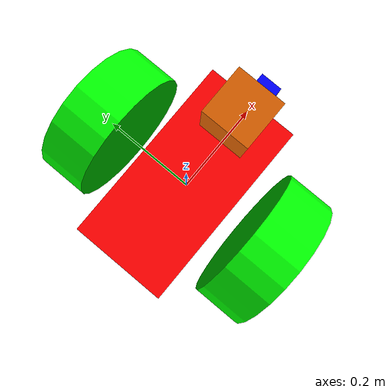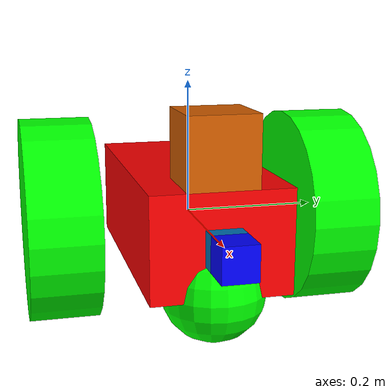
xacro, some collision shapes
<?xml version='1.0'?>

<robot name="my_robot" xmlns:xacro="http://www.ros.org/wiki/xacro">
  <xacro:include filename="$(find my_robot)/urdf/my_robot.gazebo" />

  <material name="green">
    <color rgba="0.0 1.0 0.0 1.0"/>
  </material>
  <material name="red">
    <color rgba="1.0 0.0 0.0 1.0"/>
  </material>
  <material name="blue">
    <color rgba="0.0 0.0 1.0 1.0"/>
  </material>

  <link name="robot_footprint"></link>

  <joint name="robot_footprint_joint" type="fixed">
    <origin xyz="0 0 0" rpy="0 0 0" />
    <parent link="robot_footprint"/>
    <child link="chassis" />
  </joint>

  <link name="left_wheel">
    <inertial>
      <mass value="5.0"/>
      <origin xyz="0 0 0" rpy="0 1.5707 1.5707"/>
      <inertia
        ixx="0.1" ixy="0" ixz="0"
        iyy="0.1" iyz="0"
        izz="0.1"
      />
    </inertial>

    <collision>
      <origin xyz="0 0 0" rpy="0 1.5707 1.5707"/>
      <geometry>
        <cylinder radius="0.15" length="0.1"/>
      </geometry>
    </collision>

    <visual>
      <origin xyz="0 0 0" rpy="0 1.5707 1.5707"/>
      <geometry>
        <cylinder radius="0.15" length="0.1"/>
      </geometry>
      <material name="green"/>
    </visual>
  </link>
  <gazebo reference="left_wheel">
    <material>Gazebo/Green</material>
  </gazebo>

  <link name="right_wheel">
    <inertial>
      <mass value="5.0"/>
      <origin xyz="0 0 0" rpy="0 1.5707 1.5707"/>
      <inertia
        ixx="0.1" ixy="0" ixz="0"
        iyy="0.1" iyz="0"
        izz="0.1"
      />
    </inertial>

    <collision>
      <origin xyz="0 0 0" rpy="0 1.5707 1.5707"/>
      <geometry>
        <cylinder radius="0.15" length="0.1"/>
      </geometry>
    </collision>

    <visual>
      <origin xyz="0 0 0" rpy="0 1.5707 1.5707"/>
      <geometry>
        <cylinder radius="0.15" length="0.1"/>
      </geometry>
      <material name="green"/>
    </visual>
  </link>
  <gazebo reference="right_wheel">
    <material>Gazebo/Green</material>
  </gazebo>

  <link name='chassis'>
    <pose>0 0 0.15 0 0 0</pose>

    <inertial>
      <mass value="15.0"/>
      <origin xyz="0.0 0 0" rpy=" 0 0 0"/>
      <inertia
          ixx="0.1" ixy="0" ixz="0"
          iyy="0.1" iyz="0"
          izz="0.1"
      />
    </inertial>

    <collision name='collision'>
      <origin xyz="0 0 0" rpy=" 0 0 0"/>
      <geometry>
        <box size=".4 .2 .15"/>
      </geometry>
    </collision>

    <visual name='chassis_visual'>
      <origin xyz="0 0 0" rpy=" 0 0 0"/>
      <geometry>
        <box size=".4 .2 .15"/>
      </geometry>
      <material name="red"/>
    </visual>

    <collision name='back_caster_collision'>
      <origin xyz="-0.15 0 -0.075" rpy=" 0 0 0"/>
      <geometry>
        <sphere radius="0.0749"/>
      </geometry>
    </collision>

    <visual name='back_caster_visual'>
      <origin xyz="-0.15 0 -0.075" rpy=" 0 0 0"/>
      <geometry>
        <sphere radius="0.0749"/>
      </geometry>
      <material name="green"/>
    </visual>

    <collision name='front_caster_collision'>
      <origin xyz="0.15 0 -0.075" rpy=" 0 0 0"/>
      <geometry>
        <sphere radius="0.0749"/>
      </geometry>
    </collision>

    <visual name='front_caster_visual'>
      <origin xyz="0.15 0 -0.075" rpy=" 0 0 0"/>
      <geometry>
        <sphere radius="0.0749"/>
      </geometry>
      <material name="green"/>
    </visual>

  </link>
  <gazebo reference="chassis">
    <material>Gazebo/Red</material>
  </gazebo>

  <joint type="continuous" name="left_wheel_hinge">
    <origin xyz="0 0.2 0" rpy="0 0 0"/>
    <child link="left_wheel"/>
    <parent link="chassis"/>
    <axis xyz="0 1 0" rpy="0 0 0"/>
    <limit effort="10000" velocity="1000"/>
    <dynamics damping="1.0" friction="1.0"/>
  </joint>

  <joint type="continuous" name="right_wheel_hinge">
    <origin xyz="0 -0.2 0" rpy="0 0 0"/>
    <child link="right_wheel"/>
    <parent link="chassis"/>
    <axis xyz="0 1 0" rpy="0 0 0"/>
    <limit effort="10000" velocity="1000"/>
    <dynamics damping="1.0" friction="1.0"/>
  </joint>

  <link name="camera">
    <inertial>
      <mass value="0.1"/>
      <origin xyz="0 0 0" rpy="0 0 0"/>
      <inertia
        ixx="1e-6" ixy="0" ixz="0"
        iyy="1e-6" iyz="0"
        izz="1e-6"
      />
    </inertial>

    <collision>
      <origin xyz="0 0 0" rpy="0 0 0"/>
      <geometry>
	<box size="0.05 0.05 0.05"/>
      </geometry>
    </collision>

    <visual>
      <origin xyz="0 0 0" rpy="0 0 0"/>
      <geometry>
	<box size="0.05 0.05 0.05"/>
      </geometry>
    </visual>
  </link>

  <joint type="fixed" name="camera_joint">
    <origin xyz="0.2 0 0" rpy="0 0 0"/>
    <child link="camera"/>
    <parent link="chassis"/>
    <axis xyz="0 1 0" rpy="0 0 0"/>
  </joint>

  <link name="hokuyo">
    <inertial>
      <mass value="1e-5"/>
      <origin xyz="0 0 0" rpy="0 0 0"/>
      <inertia
        ixx="1e-6" ixy="0" ixz="0"
        iyy="1e-6" iyz="0"
        izz="1e-6"
      />
    </inertial>

    <collision>
      <origin xyz="0 0 0" rpy="0 0 0"/>
      <geometry>
	<box size="0.1 0.1 0.1"/>
      </geometry>
    </collision>

    <visual>
      <origin xyz="0 0 0" rpy="0 0 0"/>
      <geometry>
	<mesh filename="package://my_robot/meshes/hokuyo.dae"/>
      </geometry>
    </visual>
  </link>

  <joint type="fixed" name="hokuyo_joint">
    <origin xyz="0.15 0 0.125" rpy="0 0 0"/>
    <child link="hokuyo"/>
    <parent link="chassis"/>
    <axis xyz="0 1 0" rpy="0 0 0"/>
  </joint>

  <joint name="camera_optical_joint" type="fixed">
    <origin xyz="0.05 0 0" rpy="0 0 0"/>
    <parent link="camera"/>
    <child link="camera_link_optical"/>
  </joint>

  <link name="camera_link_optical">
    <inertial>
      <mass value="0.1"/>
      <origin xyz="0 0 0" rpy="0 0 0"/>
      <inertia
        ixx="1e-6" ixy="0" ixz="0"
        iyy="1e-6" iyz="0"
        izz="1e-6"
      />
    </inertial>

    <collision>
      <origin xyz="0 0 0" rpy="0 0 0"/>
      <geometry>
	<box size="0.05 0.05 0.05"/>
      </geometry>
    </collision>

    <visual>
      <origin xyz="0 0 0" rpy="0 0 0"/>
      <geometry>
	<box size="0.05 0.05 0.05"/>
      </geometry>
      <material name="blue"/>
    </visual>
  </link>
  <gazebo reference="camera_link_optical">
    <material>Gazebo/Blue</material>
  </gazebo>
</robot>
